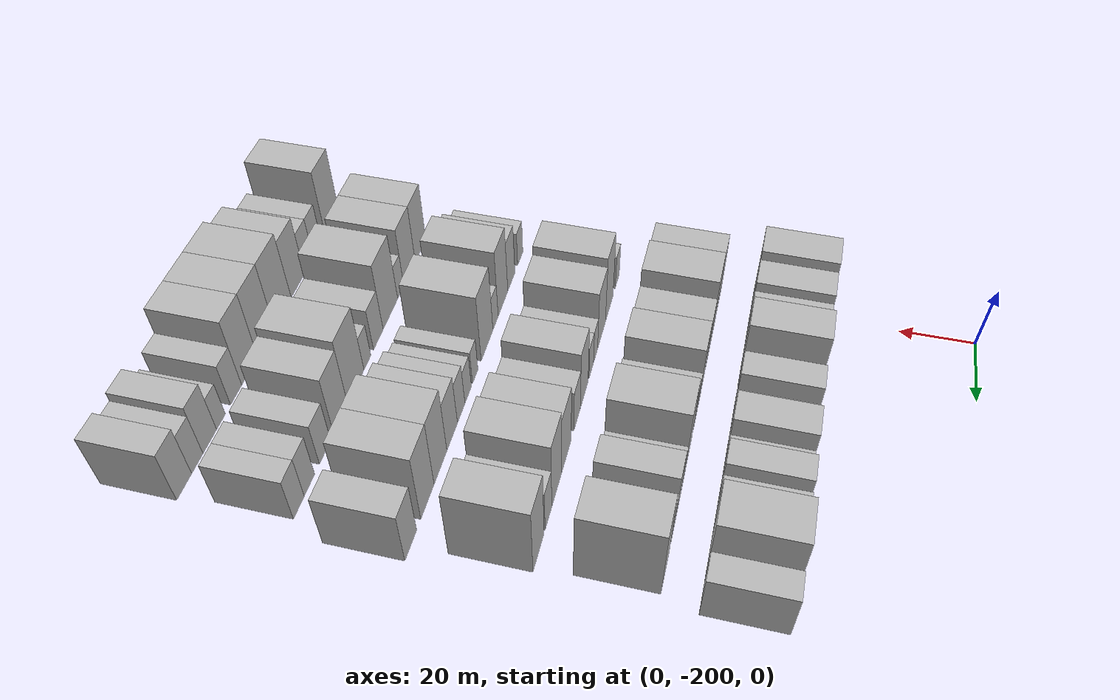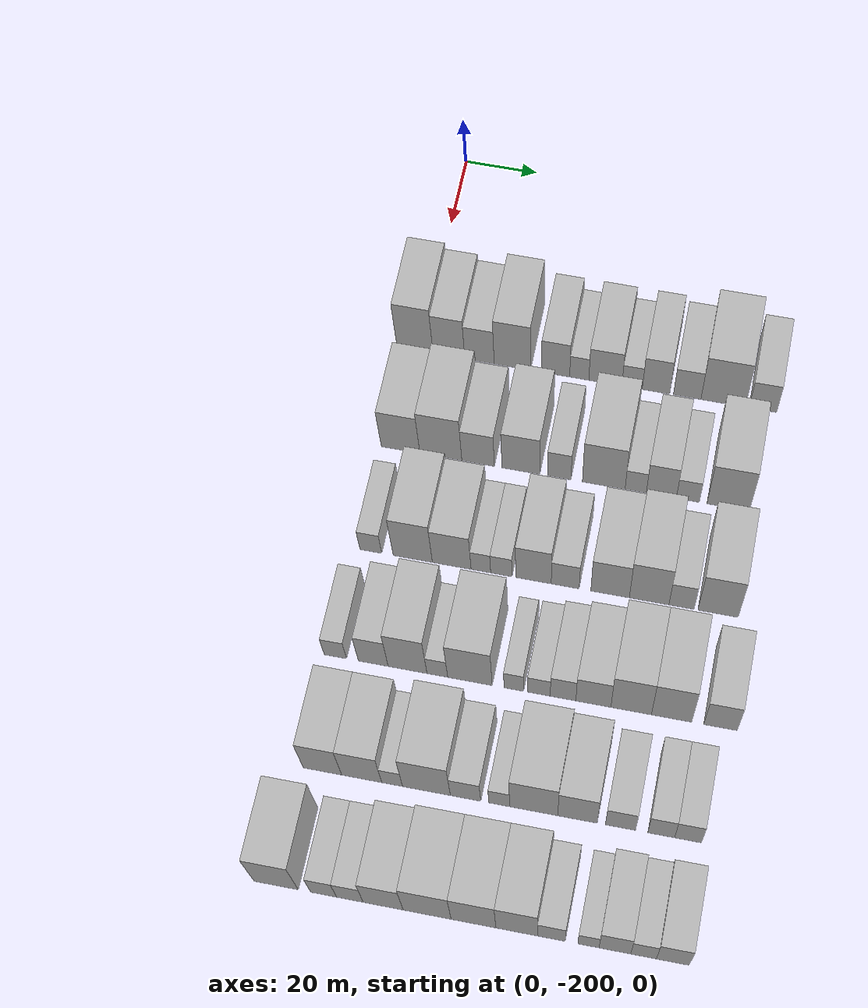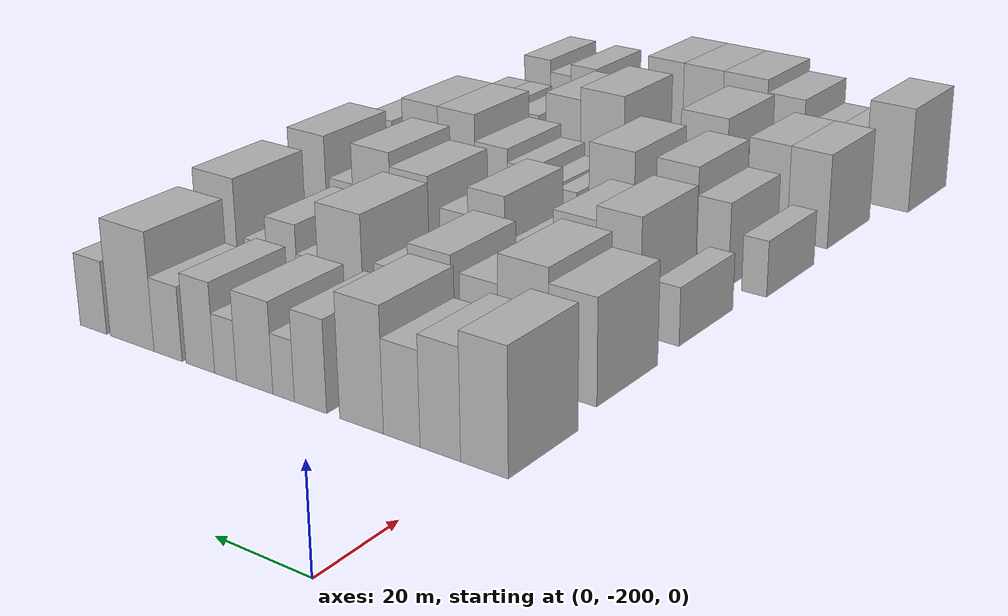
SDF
<sdf version="1.6">
 <world name="default">
  <model name="building_33">
   <static>1</static>
   <pose>50.0000 -201.5106 0 0.000000 0.000000 0.000000</pose>
   <link name="link">
    <pose>0 0 12.00 0 0 0</pose>
    <collision name="collision"><geometry><box><size>20.0000 9.7884 24.0000</size></box></geometry></collision>
    <visual name="visual">
     <cast_shadows>0</cast_shadows>
     <geometry><box><size>20.0000 9.7884 24.0000</size></box></geometry>
     <material>
      <script>
       <uri>model://HANNAS_wall/materials/scripts</uri>
       <uri>model://HANNAS_wall/materials/textures</uri>
       <name>vrc/HANNAS_wall</name>
      </script>
     </material>
    </visual>
   </link>
  </model>
  <model name="building_34">
   <static>1</static>
   <pose>50.0000 -192.3269 0 0.000000 0.000000 0.000000</pose>
   <link name="link">
    <pose>0 0 10.50 0 0 0</pose>
    <collision name="collision"><geometry><box><size>20.0000 8.5790 21.0000</size></box></geometry></collision>
    <visual name="visual">
     <cast_shadows>0</cast_shadows>
     <geometry><box><size>20.0000 8.5790 21.0000</size></box></geometry>
     <material>
      <script>
       <uri>model://HANNAS_wall/materials/scripts</uri>
       <uri>model://HANNAS_wall/materials/textures</uri>
       <name>vrc/HANNAS_wall</name>
      </script>
     </material>
    </visual>
   </link>
  </model>
  <model name="building_35">
   <static>1</static>
   <pose>50.0000 -184.0494 0 0.000000 0.000000 0.000000</pose>
   <link name="link">
    <pose>0 0 9.00 0 0 0</pose>
    <collision name="collision"><geometry><box><size>20.0000 7.9759 18.0000</size></box></geometry></collision>
    <visual name="visual">
     <cast_shadows>0</cast_shadows>
     <geometry><box><size>20.0000 7.9759 18.0000</size></box></geometry>
     <material>
      <script>
       <uri>model://HANNAS_wall/materials/scripts</uri>
       <uri>model://HANNAS_wall/materials/textures</uri>
       <name>vrc/HANNAS_wall</name>
      </script>
     </material>
    </visual>
   </link>
  </model>
  <model name="building_36">
   <static>1</static>
   <pose>50.0000 -175.1537 0 0.000000 0.000000 0.000000</pose>
   <link name="link">
    <pose>0 0 12.00 0 0 0</pose>
    <collision name="collision"><geometry><box><size>20.0000 9.8156 24.0000</size></box></geometry></collision>
    <visual name="visual">
     <cast_shadows>0</cast_shadows>
     <geometry><box><size>20.0000 9.8156 24.0000</size></box></geometry>
     <material>
      <script>
       <uri>model://HANNAS_wall/materials/scripts</uri>
       <uri>model://HANNAS_wall/materials/textures</uri>
       <name>vrc/HANNAS_wall</name>
      </script>
     </material>
    </visual>
   </link>
  </model>
  <model name="building_37">
   <static>1</static>
   <pose>50.0000 -163.4848 0 0.000000 0.000000 0.000000</pose>
   <link name="link">
    <pose>0 0 9.00 0 0 0</pose>
    <collision name="collision"><geometry><box><size>20.0000 7.5222 18.0000</size></box></geometry></collision>
    <visual name="visual">
     <cast_shadows>0</cast_shadows>
     <geometry><box><size>20.0000 7.5222 18.0000</size></box></geometry>
     <material>
      <script>
       <uri>model://HANNAS_wall/materials/scripts</uri>
       <uri>model://HANNAS_wall/materials/textures</uri>
       <name>vrc/HANNAS_wall</name>
      </script>
     </material>
    </visual>
   </link>
  </model>
  <model name="building_38">
   <static>1</static>
   <pose>50.0000 -157.1644 0 0.000000 0.000000 0.000000</pose>
   <link name="link">
    <pose>0 0 6.00 0 0 0</pose>
    <collision name="collision"><geometry><box><size>20.0000 5.1187 12.0000</size></box></geometry></collision>
    <visual name="visual">
     <cast_shadows>0</cast_shadows>
     <geometry><box><size>20.0000 5.1187 12.0000</size></box></geometry>
     <material>
      <script>
       <uri>model://HANNAS_wall/materials/scripts</uri>
       <uri>model://HANNAS_wall/materials/textures</uri>
       <name>vrc/HANNAS_wall</name>
      </script>
     </material>
    </visual>
   </link>
  </model>
  <model name="building_39">
   <static>1</static>
   <pose>50.0000 -150.1670 0 0.000000 0.000000 0.000000</pose>
   <link name="link">
    <pose>0 0 9.00 0 0 0</pose>
    <collision name="collision"><geometry><box><size>20.0000 8.8761 18.0000</size></box></geometry></collision>
    <visual name="visual">
     <cast_shadows>0</cast_shadows>
     <geometry><box><size>20.0000 8.8761 18.0000</size></box></geometry>
     <material>
      <script>
       <uri>model://HANNAS_wall/materials/scripts</uri>
       <uri>model://HANNAS_wall/materials/textures</uri>
       <name>vrc/HANNAS_wall</name>
      </script>
     </material>
    </visual>
   </link>
  </model>
  <model name="building_40">
   <static>1</static>
   <pose>50.0000 -143.0073 0 0.000000 0.000000 0.000000</pose>
   <link name="link">
    <pose>0 0 6.00 0 0 0</pose>
    <collision name="collision"><geometry><box><size>20.0000 5.4432 12.0000</size></box></geometry></collision>
    <visual name="visual">
     <cast_shadows>0</cast_shadows>
     <geometry><box><size>20.0000 5.4432 12.0000</size></box></geometry>
     <material>
      <script>
       <uri>model://HANNAS_wall/materials/scripts</uri>
       <uri>model://HANNAS_wall/materials/textures</uri>
       <name>vrc/HANNAS_wall</name>
      </script>
     </material>
    </visual>
   </link>
  </model>
  <model name="building_41">
   <static>1</static>
   <pose>50.0000 -136.6264 0 0.000000 0.000000 0.000000</pose>
   <link name="link">
    <pose>0 0 9.00 0 0 0</pose>
    <collision name="collision"><geometry><box><size>20.0000 7.3187 18.0000</size></box></geometry></collision>
    <visual name="visual">
     <cast_shadows>0</cast_shadows>
     <geometry><box><size>20.0000 7.3187 18.0000</size></box></geometry>
     <material>
      <script>
       <uri>model://HANNAS_wall/materials/scripts</uri>
       <uri>model://HANNAS_wall/materials/textures</uri>
       <name>vrc/HANNAS_wall</name>
      </script>
     </material>
    </visual>
   </link>
  </model>
  <model name="building_42">
   <static>1</static>
   <pose>50.0000 -128.3104 0 0.000000 0.000000 0.000000</pose>
   <link name="link">
    <pose>0 0 7.50 0 0 0</pose>
    <collision name="collision"><geometry><box><size>20.0000 7.3132 15.0000</size></box></geometry></collision>
    <visual name="visual">
     <cast_shadows>0</cast_shadows>
     <geometry><box><size>20.0000 7.3132 15.0000</size></box></geometry>
     <material>
      <script>
       <uri>model://HANNAS_wall/materials/scripts</uri>
       <uri>model://HANNAS_wall/materials/textures</uri>
       <name>vrc/HANNAS_wall</name>
      </script>
     </material>
    </visual>
   </link>
  </model>
  <model name="building_43">
   <static>1</static>
   <pose>50.0000 -118.7637 0 0.000000 0.000000 0.000000</pose>
   <link name="link">
    <pose>0 0 12.00 0 0 0</pose>
    <collision name="collision"><geometry><box><size>20.0000 11.7802 24.0000</size></box></geometry></collision>
    <visual name="visual">
     <cast_shadows>0</cast_shadows>
     <geometry><box><size>20.0000 11.7802 24.0000</size></box></geometry>
     <material>
      <script>
       <uri>model://HANNAS_wall/materials/scripts</uri>
       <uri>model://HANNAS_wall/materials/textures</uri>
       <name>vrc/HANNAS_wall</name>
      </script>
     </material>
    </visual>
   </link>
  </model>
  <model name="building_44">
   <static>1</static>
   <pose>50.0000 -108.2134 0 0.000000 0.000000 0.000000</pose>
   <link name="link">
    <pose>0 0 7.50 0 0 0</pose>
    <collision name="collision"><geometry><box><size>20.0000 7.3204 15.0000</size></box></geometry></collision>
    <visual name="visual">
     <cast_shadows>0</cast_shadows>
     <geometry><box><size>20.0000 7.3204 15.0000</size></box></geometry>
     <material>
      <script>
       <uri>model://HANNAS_wall/materials/scripts</uri>
       <uri>model://HANNAS_wall/materials/textures</uri>
       <name>vrc/HANNAS_wall</name>
      </script>
     </material>
    </visual>
   </link>
  </model>
  <model name="building_150">
   <static>1</static>
   <pose>79.0000 -199.0753 0 0.000000 0.000000 0.000000</pose>
   <link name="link">
    <pose>0 0 10.50 0 0 0</pose>
    <collision name="collision"><geometry><box><size>20.0000 10.2621 21.0000</size></box></geometry></collision>
    <visual name="visual">
     <cast_shadows>0</cast_shadows>
     <geometry><box><size>20.0000 10.2621 21.0000</size></box></geometry>
     <material>
      <script>
       <uri>model://HANNAS_wall/materials/scripts</uri>
       <uri>model://HANNAS_wall/materials/textures</uri>
       <name>vrc/HANNAS_wall</name>
      </script>
     </material>
    </visual>
   </link>
  </model>
  <model name="building_151">
   <static>1</static>
   <pose>79.0000 -188.3875 0 0.000000 0.000000 0.000000</pose>
   <link name="link">
    <pose>0 0 12.00 0 0 0</pose>
    <collision name="collision"><geometry><box><size>20.0000 11.1135 24.0000</size></box></geometry></collision>
    <visual name="visual">
     <cast_shadows>0</cast_shadows>
     <geometry><box><size>20.0000 11.1135 24.0000</size></box></geometry>
     <material>
      <script>
       <uri>model://HANNAS_wall/materials/scripts</uri>
       <uri>model://HANNAS_wall/materials/textures</uri>
       <name>vrc/HANNAS_wall</name>
      </script>
     </material>
    </visual>
   </link>
  </model>
  <model name="building_152">
   <static>1</static>
   <pose>79.0000 -178.5233 0 0.000000 0.000000 0.000000</pose>
   <link name="link">
    <pose>0 0 9.00 0 0 0</pose>
    <collision name="collision"><geometry><box><size>20.0000 8.6148 18.0000</size></box></geometry></collision>
    <visual name="visual">
     <cast_shadows>0</cast_shadows>
     <geometry><box><size>20.0000 8.6148 18.0000</size></box></geometry>
     <material>
      <script>
       <uri>model://HANNAS_wall/materials/scripts</uri>
       <uri>model://HANNAS_wall/materials/textures</uri>
       <name>vrc/HANNAS_wall</name>
      </script>
     </material>
    </visual>
   </link>
  </model>
  <model name="building_153">
   <static>1</static>
   <pose>79.0000 -167.2297 0 0.000000 0.000000 0.000000</pose>
   <link name="link">
    <pose>0 0 10.50 0 0 0</pose>
    <collision name="collision"><geometry><box><size>20.0000 9.9723 21.0000</size></box></geometry></collision>
    <visual name="visual">
     <cast_shadows>0</cast_shadows>
     <geometry><box><size>20.0000 9.9723 21.0000</size></box></geometry>
     <material>
      <script>
       <uri>model://HANNAS_wall/materials/scripts</uri>
       <uri>model://HANNAS_wall/materials/textures</uri>
       <name>vrc/HANNAS_wall</name>
      </script>
     </material>
    </visual>
   </link>
  </model>
  <model name="building_154">
   <static>1</static>
   <pose>79.0000 -157.1496 0 0.000000 0.000000 0.000000</pose>
   <link name="link">
    <pose>0 0 7.50 0 0 0</pose>
    <collision name="collision"><geometry><box><size>20.0000 6.1880 15.0000</size></box></geometry></collision>
    <visual name="visual">
     <cast_shadows>0</cast_shadows>
     <geometry><box><size>20.0000 6.1880 15.0000</size></box></geometry>
     <material>
      <script>
       <uri>model://HANNAS_wall/materials/scripts</uri>
       <uri>model://HANNAS_wall/materials/textures</uri>
       <name>vrc/HANNAS_wall</name>
      </script>
     </material>
    </visual>
   </link>
  </model>
  <model name="building_155">
   <static>1</static>
   <pose>79.0000 -145.4756 0 0.000000 0.000000 0.000000</pose>
   <link name="link">
    <pose>0 0 12.00 0 0 0</pose>
    <collision name="collision"><geometry><box><size>20.0000 11.1599 24.0000</size></box></geometry></collision>
    <visual name="visual">
     <cast_shadows>0</cast_shadows>
     <geometry><box><size>20.0000 11.1599 24.0000</size></box></geometry>
     <material>
      <script>
       <uri>model://HANNAS_wall/materials/scripts</uri>
       <uri>model://HANNAS_wall/materials/textures</uri>
       <name>vrc/HANNAS_wall</name>
      </script>
     </material>
    </visual>
   </link>
  </model>
  <model name="building_156">
   <static>1</static>
   <pose>79.0000 -137.1207 0 0.000000 0.000000 0.000000</pose>
   <link name="link">
    <pose>0 0 6.00 0 0 0</pose>
    <collision name="collision"><geometry><box><size>20.0000 5.5499 12.0000</size></box></geometry></collision>
    <visual name="visual">
     <cast_shadows>0</cast_shadows>
     <geometry><box><size>20.0000 5.5499 12.0000</size></box></geometry>
     <material>
      <script>
       <uri>model://HANNAS_wall/materials/scripts</uri>
       <uri>model://HANNAS_wall/materials/textures</uri>
       <name>vrc/HANNAS_wall</name>
      </script>
     </material>
    </visual>
   </link>
  </model>
  <model name="building_157">
   <static>1</static>
   <pose>79.0000 -130.4209 0 0.000000 0.000000 0.000000</pose>
   <link name="link">
    <pose>0 0 9.00 0 0 0</pose>
    <collision name="collision"><geometry><box><size>20.0000 7.8496 18.0000</size></box></geometry></collision>
    <visual name="visual">
     <cast_shadows>0</cast_shadows>
     <geometry><box><size>20.0000 7.8496 18.0000</size></box></geometry>
     <material>
      <script>
       <uri>model://HANNAS_wall/materials/scripts</uri>
       <uri>model://HANNAS_wall/materials/textures</uri>
       <name>vrc/HANNAS_wall</name>
      </script>
     </material>
    </visual>
   </link>
  </model>
  <model name="building_158">
   <static>1</static>
   <pose>79.0000 -123.5038 0 0.000000 0.000000 0.000000</pose>
   <link name="link">
    <pose>0 0 6.00 0 0 0</pose>
    <collision name="collision"><geometry><box><size>20.0000 5.9847 12.0000</size></box></geometry></collision>
    <visual name="visual">
     <cast_shadows>0</cast_shadows>
     <geometry><box><size>20.0000 5.9847 12.0000</size></box></geometry>
     <material>
      <script>
       <uri>model://HANNAS_wall/materials/scripts</uri>
       <uri>model://HANNAS_wall/materials/textures</uri>
       <name>vrc/HANNAS_wall</name>
      </script>
     </material>
    </visual>
   </link>
  </model>
  <model name="building_159">
   <static>1</static>
   <pose>79.0000 -113.0127 0 0.000000 0.000000 0.000000</pose>
   <link name="link">
    <pose>0 0 12.00 0 0 0</pose>
    <collision name="collision"><geometry><box><size>20.0000 10.9976 24.0000</size></box></geometry></collision>
    <visual name="visual">
     <cast_shadows>0</cast_shadows>
     <geometry><box><size>20.0000 10.9976 24.0000</size></box></geometry>
     <material>
      <script>
       <uri>model://HANNAS_wall/materials/scripts</uri>
       <uri>model://HANNAS_wall/materials/textures</uri>
       <name>vrc/HANNAS_wall</name>
      </script>
     </material>
    </visual>
   </link>
  </model>
  <model name="building_265">
   <static>1</static>
   <pose>108.0000 -200.4489 0 0.000000 0.000000 0.000000</pose>
   <link name="link">
    <pose>0 0 6.00 0 0 0</pose>
    <collision name="collision"><geometry><box><size>20.0000 5.6499 12.0000</size></box></geometry></collision>
    <visual name="visual">
     <cast_shadows>0</cast_shadows>
     <geometry><box><size>20.0000 5.6499 12.0000</size></box></geometry>
     <material>
      <script>
       <uri>model://HANNAS_wall/materials/scripts</uri>
       <uri>model://HANNAS_wall/materials/textures</uri>
       <name>vrc/HANNAS_wall</name>
      </script>
     </material>
    </visual>
   </link>
  </model>
  <model name="building_266">
   <static>1</static>
   <pose>108.0000 -189.5399 0 0.000000 0.000000 0.000000</pose>
   <link name="link">
    <pose>0 0 12.00 0 0 0</pose>
    <collision name="collision"><geometry><box><size>20.0000 10.1680 24.0000</size></box></geometry></collision>
    <visual name="visual">
     <cast_shadows>0</cast_shadows>
     <geometry><box><size>20.0000 10.1680 24.0000</size></box></geometry>
     <material>
      <script>
       <uri>model://HANNAS_wall/materials/scripts</uri>
       <uri>model://HANNAS_wall/materials/textures</uri>
       <name>vrc/HANNAS_wall</name>
      </script>
     </material>
    </visual>
   </link>
  </model>
  <model name="building_267">
   <static>1</static>
   <pose>108.0000 -179.4503 0 0.000000 0.000000 0.000000</pose>
   <link name="link">
    <pose>0 0 10.50 0 0 0</pose>
    <collision name="collision"><geometry><box><size>20.0000 10.0112 21.0000</size></box></geometry></collision>
    <visual name="visual">
     <cast_shadows>0</cast_shadows>
     <geometry><box><size>20.0000 10.0112 21.0000</size></box></geometry>
     <material>
      <script>
       <uri>model://HANNAS_wall/materials/scripts</uri>
       <uri>model://HANNAS_wall/materials/textures</uri>
       <name>vrc/HANNAS_wall</name>
      </script>
     </material>
    </visual>
   </link>
  </model>
  <model name="building_268">
   <static>1</static>
   <pose>108.0000 -171.9174 0 0.000000 0.000000 0.000000</pose>
   <link name="link">
    <pose>0 0 6.00 0 0 0</pose>
    <collision name="collision"><geometry><box><size>20.0000 5.0546 12.0000</size></box></geometry></collision>
    <visual name="visual">
     <cast_shadows>0</cast_shadows>
     <geometry><box><size>20.0000 5.0546 12.0000</size></box></geometry>
     <material>
      <script>
       <uri>model://HANNAS_wall/materials/scripts</uri>
       <uri>model://HANNAS_wall/materials/textures</uri>
       <name>vrc/HANNAS_wall</name>
      </script>
     </material>
    </visual>
   </link>
  </model>
  <model name="building_269">
   <static>1</static>
   <pose>108.0000 -166.6346 0 0.000000 0.000000 0.000000</pose>
   <link name="link">
    <pose>0 0 6.00 0 0 0</pose>
    <collision name="collision"><geometry><box><size>20.0000 5.5110 12.0000</size></box></geometry></collision>
    <visual name="visual">
     <cast_shadows>0</cast_shadows>
     <geometry><box><size>20.0000 5.5110 12.0000</size></box></geometry>
     <material>
      <script>
       <uri>model://HANNAS_wall/materials/scripts</uri>
       <uri>model://HANNAS_wall/materials/textures</uri>
       <name>vrc/HANNAS_wall</name>
      </script>
     </material>
    </visual>
   </link>
  </model>
  <model name="building_270">
   <static>1</static>
   <pose>108.0000 -158.3433 0 0.000000 0.000000 0.000000</pose>
   <link name="link">
    <pose>0 0 10.50 0 0 0</pose>
    <collision name="collision"><geometry><box><size>20.0000 9.0716 21.0000</size></box></geometry></collision>
    <visual name="visual">
     <cast_shadows>0</cast_shadows>
     <geometry><box><size>20.0000 9.0716 21.0000</size></box></geometry>
     <material>
      <script>
       <uri>model://HANNAS_wall/materials/scripts</uri>
       <uri>model://HANNAS_wall/materials/textures</uri>
       <name>vrc/HANNAS_wall</name>
      </script>
     </material>
    </visual>
   </link>
  </model>
  <model name="building_271">
   <static>1</static>
   <pose>108.0000 -150.2254 0 0.000000 0.000000 0.000000</pose>
   <link name="link">
    <pose>0 0 7.50 0 0 0</pose>
    <collision name="collision"><geometry><box><size>20.0000 7.1643 15.0000</size></box></geometry></collision>
    <visual name="visual">
     <cast_shadows>0</cast_shadows>
     <geometry><box><size>20.0000 7.1643 15.0000</size></box></geometry>
     <material>
      <script>
       <uri>model://HANNAS_wall/materials/scripts</uri>
       <uri>model://HANNAS_wall/materials/textures</uri>
       <name>vrc/HANNAS_wall</name>
      </script>
     </material>
    </visual>
   </link>
  </model>
  <model name="building_272">
   <static>1</static>
   <pose>108.0000 -138.7220 0 0.000000 0.000000 0.000000</pose>
   <link name="link">
    <pose>0 0 10.50 0 0 0</pose>
    <collision name="collision"><geometry><box><size>20.0000 9.8425 21.0000</size></box></geometry></collision>
    <visual name="visual">
     <cast_shadows>0</cast_shadows>
     <geometry><box><size>20.0000 9.8425 21.0000</size></box></geometry>
     <material>
      <script>
       <uri>model://HANNAS_wall/materials/scripts</uri>
       <uri>model://HANNAS_wall/materials/textures</uri>
       <name>vrc/HANNAS_wall</name>
      </script>
     </material>
    </visual>
   </link>
  </model>
  <model name="building_273">
   <static>1</static>
   <pose>108.0000 -128.7483 0 0.000000 0.000000 0.000000</pose>
   <link name="link">
    <pose>0 0 12.00 0 0 0</pose>
    <collision name="collision"><geometry><box><size>20.0000 10.1050 24.0000</size></box></geometry></collision>
    <visual name="visual">
     <cast_shadows>0</cast_shadows>
     <geometry><box><size>20.0000 10.1050 24.0000</size></box></geometry>
     <material>
      <script>
       <uri>model://HANNAS_wall/materials/scripts</uri>
       <uri>model://HANNAS_wall/materials/textures</uri>
       <name>vrc/HANNAS_wall</name>
      </script>
     </material>
    </visual>
   </link>
  </model>
  <model name="building_274">
   <static>1</static>
   <pose>108.0000 -120.4995 0 0.000000 0.000000 0.000000</pose>
   <link name="link">
    <pose>0 0 7.50 0 0 0</pose>
    <collision name="collision"><geometry><box><size>20.0000 6.3925 15.0000</size></box></geometry></collision>
    <visual name="visual">
     <cast_shadows>0</cast_shadows>
     <geometry><box><size>20.0000 6.3925 15.0000</size></box></geometry>
     <material>
      <script>
       <uri>model://HANNAS_wall/materials/scripts</uri>
       <uri>model://HANNAS_wall/materials/textures</uri>
       <name>vrc/HANNAS_wall</name>
      </script>
     </material>
    </visual>
   </link>
  </model>
  <model name="building_275">
   <static>1</static>
   <pose>108.0000 -111.2055 0 0.000000 0.000000 0.000000</pose>
   <link name="link">
    <pose>0 0 12.00 0 0 0</pose>
    <collision name="collision"><geometry><box><size>20.0000 10.1956 24.0000</size></box></geometry></collision>
    <visual name="visual">
     <cast_shadows>0</cast_shadows>
     <geometry><box><size>20.0000 10.1956 24.0000</size></box></geometry>
     <material>
      <script>
       <uri>model://HANNAS_wall/materials/scripts</uri>
       <uri>model://HANNAS_wall/materials/textures</uri>
       <name>vrc/HANNAS_wall</name>
      </script>
     </material>
    </visual>
   </link>
  </model>
  <model name="building_376">
   <static>1</static>
   <pose>137.0000 -202.9417 0 0.000000 0.000000 0.000000</pose>
   <link name="link">
    <pose>0 0 6.00 0 0 0</pose>
    <collision name="collision"><geometry><box><size>20.0000 5.7023 12.0000</size></box></geometry></collision>
    <visual name="visual">
     <cast_shadows>0</cast_shadows>
     <geometry><box><size>20.0000 5.7023 12.0000</size></box></geometry>
     <material>
      <script>
       <uri>model://HANNAS_wall/materials/scripts</uri>
       <uri>model://HANNAS_wall/materials/textures</uri>
       <name>vrc/HANNAS_wall</name>
      </script>
     </material>
    </visual>
   </link>
  </model>
  <model name="building_377">
   <static>1</static>
   <pose>137.0000 -193.3016 0 0.000000 0.000000 0.000000</pose>
   <link name="link">
    <pose>0 0 9.00 0 0 0</pose>
    <collision name="collision"><geometry><box><size>20.0000 7.5780 18.0000</size></box></geometry></collision>
    <visual name="visual">
     <cast_shadows>0</cast_shadows>
     <geometry><box><size>20.0000 7.5780 18.0000</size></box></geometry>
     <material>
      <script>
       <uri>model://HANNAS_wall/materials/scripts</uri>
       <uri>model://HANNAS_wall/materials/textures</uri>
       <name>vrc/HANNAS_wall</name>
      </script>
     </material>
    </visual>
   </link>
  </model>
  <model name="building_378">
   <static>1</static>
   <pose>137.0000 -184.5839 0 0.000000 0.000000 0.000000</pose>
   <link name="link">
    <pose>0 0 12.00 0 0 0</pose>
    <collision name="collision"><geometry><box><size>20.0000 9.8573 24.0000</size></box></geometry></collision>
    <visual name="visual">
     <cast_shadows>0</cast_shadows>
     <geometry><box><size>20.0000 9.8573 24.0000</size></box></geometry>
     <material>
      <script>
       <uri>model://HANNAS_wall/materials/scripts</uri>
       <uri>model://HANNAS_wall/materials/textures</uri>
       <name>vrc/HANNAS_wall</name>
      </script>
     </material>
    </visual>
   </link>
  </model>
  <model name="building_379">
   <static>1</static>
   <pose>137.0000 -177.0437 0 0.000000 0.000000 0.000000</pose>
   <link name="link">
    <pose>0 0 6.00 0 0 0</pose>
    <collision name="collision"><geometry><box><size>20.0000 5.2232 12.0000</size></box></geometry></collision>
    <visual name="visual">
     <cast_shadows>0</cast_shadows>
     <geometry><box><size>20.0000 5.2232 12.0000</size></box></geometry>
     <material>
      <script>
       <uri>model://HANNAS_wall/materials/scripts</uri>
       <uri>model://HANNAS_wall/materials/textures</uri>
       <name>vrc/HANNAS_wall</name>
      </script>
     </material>
    </visual>
   </link>
  </model>
  <model name="building_380">
   <static>1</static>
   <pose>137.0000 -168.8135 0 0.000000 0.000000 0.000000</pose>
   <link name="link">
    <pose>0 0 12.00 0 0 0</pose>
    <collision name="collision"><geometry><box><size>20.0000 11.2372 24.0000</size></box></geometry></collision>
    <visual name="visual">
     <cast_shadows>0</cast_shadows>
     <geometry><box><size>20.0000 11.2372 24.0000</size></box></geometry>
     <material>
      <script>
       <uri>model://HANNAS_wall/materials/scripts</uri>
       <uri>model://HANNAS_wall/materials/textures</uri>
       <name>vrc/HANNAS_wall</name>
      </script>
     </material>
    </visual>
   </link>
  </model>
  <model name="building_381">
   <static>1</static>
   <pose>137.0000 -157.7362 0 0.000000 0.000000 0.000000</pose>
   <link name="link">
    <pose>0 0 6.00 0 0 0</pose>
    <collision name="collision"><geometry><box><size>20.0000 4.9174 12.0000</size></box></geometry></collision>
    <visual name="visual">
     <cast_shadows>0</cast_shadows>
     <geometry><box><size>20.0000 4.9174 12.0000</size></box></geometry>
     <material>
      <script>
       <uri>model://HANNAS_wall/materials/scripts</uri>
       <uri>model://HANNAS_wall/materials/textures</uri>
       <name>vrc/HANNAS_wall</name>
      </script>
     </material>
    </visual>
   </link>
  </model>
  <model name="building_382">
   <static>1</static>
   <pose>137.0000 -151.4319 0 0.000000 0.000000 0.000000</pose>
   <link name="link">
    <pose>0 0 6.00 0 0 0</pose>
    <collision name="collision"><geometry><box><size>20.0000 5.6911 12.0000</size></box></geometry></collision>
    <visual name="visual">
     <cast_shadows>0</cast_shadows>
     <geometry><box><size>20.0000 5.6911 12.0000</size></box></geometry>
     <material>
      <script>
       <uri>model://HANNAS_wall/materials/scripts</uri>
       <uri>model://HANNAS_wall/materials/textures</uri>
       <name>vrc/HANNAS_wall</name>
      </script>
     </material>
    </visual>
   </link>
  </model>
  <model name="building_383">
   <static>1</static>
   <pose>137.0000 -145.3822 0 0.000000 0.000000 0.000000</pose>
   <link name="link">
    <pose>0 0 7.50 0 0 0</pose>
    <collision name="collision"><geometry><box><size>20.0000 6.4083 15.0000</size></box></geometry></collision>
    <visual name="visual">
     <cast_shadows>0</cast_shadows>
     <geometry><box><size>20.0000 6.4083 15.0000</size></box></geometry>
     <material>
      <script>
       <uri>model://HANNAS_wall/materials/scripts</uri>
       <uri>model://HANNAS_wall/materials/textures</uri>
       <name>vrc/HANNAS_wall</name>
      </script>
     </material>
    </visual>
   </link>
  </model>
  <model name="building_384">
   <static>1</static>
   <pose>137.0000 -137.8052 0 0.000000 0.000000 0.000000</pose>
   <link name="link">
    <pose>0 0 9.00 0 0 0</pose>
    <collision name="collision"><geometry><box><size>20.0000 8.7457 18.0000</size></box></geometry></collision>
    <visual name="visual">
     <cast_shadows>0</cast_shadows>
     <geometry><box><size>20.0000 8.7457 18.0000</size></box></geometry>
     <material>
      <script>
       <uri>model://HANNAS_wall/materials/scripts</uri>
       <uri>model://HANNAS_wall/materials/textures</uri>
       <name>vrc/HANNAS_wall</name>
      </script>
     </material>
    </visual>
   </link>
  </model>
  <model name="building_385">
   <static>1</static>
   <pose>137.0000 -128.3775 0 0.000000 0.000000 0.000000</pose>
   <link name="link">
    <pose>0 0 12.00 0 0 0</pose>
    <collision name="collision"><geometry><box><size>20.0000 10.1097 24.0000</size></box></geometry></collision>
    <visual name="visual">
     <cast_shadows>0</cast_shadows>
     <geometry><box><size>20.0000 10.1097 24.0000</size></box></geometry>
     <material>
      <script>
       <uri>model://HANNAS_wall/materials/scripts</uri>
       <uri>model://HANNAS_wall/materials/textures</uri>
       <name>vrc/HANNAS_wall</name>
      </script>
     </material>
    </visual>
   </link>
  </model>
  <model name="building_386">
   <static>1</static>
   <pose>137.0000 -118.3121 0 0.000000 0.000000 0.000000</pose>
   <link name="link">
    <pose>0 0 12.00 0 0 0</pose>
    <collision name="collision"><geometry><box><size>20.0000 10.0212 24.0000</size></box></geometry></collision>
    <visual name="visual">
     <cast_shadows>0</cast_shadows>
     <geometry><box><size>20.0000 10.0212 24.0000</size></box></geometry>
     <material>
      <script>
       <uri>model://HANNAS_wall/materials/scripts</uri>
       <uri>model://HANNAS_wall/materials/textures</uri>
       <name>vrc/HANNAS_wall</name>
      </script>
     </material>
    </visual>
   </link>
  </model>
  <model name="building_387">
   <static>1</static>
   <pose>137.0000 -106.1566 0 0.000000 0.000000 0.000000</pose>
   <link name="link">
    <pose>0 0 9.00 0 0 0</pose>
    <collision name="collision"><geometry><box><size>20.0000 8.2899 18.0000</size></box></geometry></collision>
    <visual name="visual">
     <cast_shadows>0</cast_shadows>
     <geometry><box><size>20.0000 8.2899 18.0000</size></box></geometry>
     <material>
      <script>
       <uri>model://HANNAS_wall/materials/scripts</uri>
       <uri>model://HANNAS_wall/materials/textures</uri>
       <name>vrc/HANNAS_wall</name>
      </script>
     </material>
    </visual>
   </link>
  </model>
  <model name="building_494">
   <static>1</static>
   <pose>166.0000 -199.4009 0 0.000000 0.000000 0.000000</pose>
   <link name="link">
    <pose>0 0 10.50 0 0 0</pose>
    <collision name="collision"><geometry><box><size>20.0000 9.5617 21.0000</size></box></geometry></collision>
    <visual name="visual">
     <cast_shadows>0</cast_shadows>
     <geometry><box><size>20.0000 9.5617 21.0000</size></box></geometry>
     <material>
      <script>
       <uri>model://HANNAS_wall/materials/scripts</uri>
       <uri>model://HANNAS_wall/materials/textures</uri>
       <name>vrc/HANNAS_wall</name>
      </script>
     </material>
    </visual>
   </link>
  </model>
  <model name="building_495">
   <static>1</static>
   <pose>166.0000 -189.6479 0 0.000000 0.000000 0.000000</pose>
   <link name="link">
    <pose>0 0 10.50 0 0 0</pose>
    <collision name="collision"><geometry><box><size>20.0000 9.9443 21.0000</size></box></geometry></collision>
    <visual name="visual">
     <cast_shadows>0</cast_shadows>
     <geometry><box><size>20.0000 9.9443 21.0000</size></box></geometry>
     <material>
      <script>
       <uri>model://HANNAS_wall/materials/scripts</uri>
       <uri>model://HANNAS_wall/materials/textures</uri>
       <name>vrc/HANNAS_wall</name>
      </script>
     </material>
    </visual>
   </link>
  </model>
  <model name="building_496">
   <static>1</static>
   <pose>166.0000 -182.0946 0 0.000000 0.000000 0.000000</pose>
   <link name="link">
    <pose>0 0 6.00 0 0 0</pose>
    <collision name="collision"><geometry><box><size>20.0000 5.1623 12.0000</size></box></geometry></collision>
    <visual name="visual">
     <cast_shadows>0</cast_shadows>
     <geometry><box><size>20.0000 5.1623 12.0000</size></box></geometry>
     <material>
      <script>
       <uri>model://HANNAS_wall/materials/scripts</uri>
       <uri>model://HANNAS_wall/materials/textures</uri>
       <name>vrc/HANNAS_wall</name>
      </script>
     </material>
    </visual>
   </link>
  </model>
  <model name="building_497">
   <static>1</static>
   <pose>166.0000 -173.5982 0 0.000000 0.000000 0.000000</pose>
   <link name="link">
    <pose>0 0 12.00 0 0 0</pose>
    <collision name="collision"><geometry><box><size>20.0000 11.8305 24.0000</size></box></geometry></collision>
    <visual name="visual">
     <cast_shadows>0</cast_shadows>
     <geometry><box><size>20.0000 11.8305 24.0000</size></box></geometry>
     <material>
      <script>
       <uri>model://HANNAS_wall/materials/scripts</uri>
       <uri>model://HANNAS_wall/materials/textures</uri>
       <name>vrc/HANNAS_wall</name>
      </script>
     </material>
    </visual>
   </link>
  </model>
  <model name="building_498">
   <static>1</static>
   <pose>166.0000 -163.9395 0 0.000000 0.000000 0.000000</pose>
   <link name="link">
    <pose>0 0 7.50 0 0 0</pose>
    <collision name="collision"><geometry><box><size>20.0000 7.4868 15.0000</size></box></geometry></collision>
    <visual name="visual">
     <cast_shadows>0</cast_shadows>
     <geometry><box><size>20.0000 7.4868 15.0000</size></box></geometry>
     <material>
      <script>
       <uri>model://HANNAS_wall/materials/scripts</uri>
       <uri>model://HANNAS_wall/materials/textures</uri>
       <name>vrc/HANNAS_wall</name>
      </script>
     </material>
    </visual>
   </link>
  </model>
  <model name="building_499">
   <static>1</static>
   <pose>166.0000 -155.6244 0 0.000000 0.000000 0.000000</pose>
   <link name="link">
    <pose>0 0 6.00 0 0 0</pose>
    <collision name="collision"><geometry><box><size>20.0000 5.1434 12.0000</size></box></geometry></collision>
    <visual name="visual">
     <cast_shadows>0</cast_shadows>
     <geometry><box><size>20.0000 5.1434 12.0000</size></box></geometry>
     <material>
      <script>
       <uri>model://HANNAS_wall/materials/scripts</uri>
       <uri>model://HANNAS_wall/materials/textures</uri>
       <name>vrc/HANNAS_wall</name>
      </script>
     </material>
    </visual>
   </link>
  </model>
  <model name="building_500">
   <static>1</static>
   <pose>166.0000 -147.1725 0 0.000000 0.000000 0.000000</pose>
   <link name="link">
    <pose>0 0 12.00 0 0 0</pose>
    <collision name="collision"><geometry><box><size>20.0000 11.7603 24.0000</size></box></geometry></collision>
    <visual name="visual">
     <cast_shadows>0</cast_shadows>
     <geometry><box><size>20.0000 11.7603 24.0000</size></box></geometry>
     <material>
      <script>
       <uri>model://HANNAS_wall/materials/scripts</uri>
       <uri>model://HANNAS_wall/materials/textures</uri>
       <name>vrc/HANNAS_wall</name>
      </script>
     </material>
    </visual>
   </link>
  </model>
  <model name="building_501">
   <static>1</static>
   <pose>166.0000 -136.4807 0 0.000000 0.000000 0.000000</pose>
   <link name="link">
    <pose>0 0 10.50 0 0 0</pose>
    <collision name="collision"><geometry><box><size>20.0000 9.6233 21.0000</size></box></geometry></collision>
    <visual name="visual">
     <cast_shadows>0</cast_shadows>
     <geometry><box><size>20.0000 9.6233 21.0000</size></box></geometry>
     <material>
      <script>
       <uri>model://HANNAS_wall/materials/scripts</uri>
       <uri>model://HANNAS_wall/materials/textures</uri>
       <name>vrc/HANNAS_wall</name>
      </script>
     </material>
    </visual>
   </link>
  </model>
  <model name="building_502">
   <static>1</static>
   <pose>166.0000 -126.0011 0 0.000000 0.000000 0.000000</pose>
   <link name="link">
    <pose>0 0 7.50 0 0 0</pose>
    <collision name="collision"><geometry><box><size>20.0000 7.3360 15.0000</size></box></geometry></collision>
    <visual name="visual">
     <cast_shadows>0</cast_shadows>
     <geometry><box><size>20.0000 7.3360 15.0000</size></box></geometry>
     <material>
      <script>
       <uri>model://HANNAS_wall/materials/scripts</uri>
       <uri>model://HANNAS_wall/materials/textures</uri>
       <name>vrc/HANNAS_wall</name>
      </script>
     </material>
    </visual>
   </link>
  </model>
  <model name="building_503">
   <static>1</static>
   <pose>166.0000 -116.1047 0 0.000000 0.000000 0.000000</pose>
   <link name="link">
    <pose>0 0 7.50 0 0 0</pose>
    <collision name="collision"><geometry><box><size>20.0000 6.4567 15.0000</size></box></geometry></collision>
    <visual name="visual">
     <cast_shadows>0</cast_shadows>
     <geometry><box><size>20.0000 6.4567 15.0000</size></box></geometry>
     <material>
      <script>
       <uri>model://HANNAS_wall/materials/scripts</uri>
       <uri>model://HANNAS_wall/materials/textures</uri>
       <name>vrc/HANNAS_wall</name>
      </script>
     </material>
    </visual>
   </link>
  </model>
  <model name="building_504">
   <static>1</static>
   <pose>166.0000 -109.6133 0 0.000000 0.000000 0.000000</pose>
   <link name="link">
    <pose>0 0 7.50 0 0 0</pose>
    <collision name="collision"><geometry><box><size>20.0000 6.5261 15.0000</size></box></geometry></collision>
    <visual name="visual">
     <cast_shadows>0</cast_shadows>
     <geometry><box><size>20.0000 6.5261 15.0000</size></box></geometry>
     <material>
      <script>
       <uri>model://HANNAS_wall/materials/scripts</uri>
       <uri>model://HANNAS_wall/materials/textures</uri>
       <name>vrc/HANNAS_wall</name>
      </script>
     </material>
    </visual>
   </link>
  </model>
  <model name="building_606">
   <static>1</static>
   <pose>195.0000 -203.8229 0 0.000000 0.000000 0.000000</pose>
   <link name="link">
    <pose>0 0 12.00 0 0 0</pose>
    <collision name="collision"><geometry><box><size>20.0000 10.7874 24.0000</size></box></geometry></collision>
    <visual name="visual">
     <cast_shadows>0</cast_shadows>
     <geometry><box><size>20.0000 10.7874 24.0000</size></box></geometry>
     <material>
      <script>
       <uri>model://HANNAS_wall/materials/scripts</uri>
       <uri>model://HANNAS_wall/materials/textures</uri>
       <name>vrc/HANNAS_wall</name>
      </script>
     </material>
    </visual>
   </link>
  </model>
  <model name="building_607">
   <static>1</static>
   <pose>195.0000 -192.2795 0 0.000000 0.000000 0.000000</pose>
   <link name="link">
    <pose>0 0 7.50 0 0 0</pose>
    <collision name="collision"><geometry><box><size>20.0000 6.2995 15.0000</size></box></geometry></collision>
    <visual name="visual">
     <cast_shadows>0</cast_shadows>
     <geometry><box><size>20.0000 6.2995 15.0000</size></box></geometry>
     <material>
      <script>
       <uri>model://HANNAS_wall/materials/scripts</uri>
       <uri>model://HANNAS_wall/materials/textures</uri>
       <name>vrc/HANNAS_wall</name>
      </script>
     </material>
    </visual>
   </link>
  </model>
  <model name="building_608">
   <static>1</static>
   <pose>195.0000 -185.8879 0 0.000000 0.000000 0.000000</pose>
   <link name="link">
    <pose>0 0 7.50 0 0 0</pose>
    <collision name="collision"><geometry><box><size>20.0000 6.4838 15.0000</size></box></geometry></collision>
    <visual name="visual">
     <cast_shadows>0</cast_shadows>
     <geometry><box><size>20.0000 6.4838 15.0000</size></box></geometry>
     <material>
      <script>
       <uri>model://HANNAS_wall/materials/scripts</uri>
       <uri>model://HANNAS_wall/materials/textures</uri>
       <name>vrc/HANNAS_wall</name>
      </script>
     </material>
    </visual>
   </link>
  </model>
  <model name="building_609">
   <static>1</static>
   <pose>195.0000 -177.8283 0 0.000000 0.000000 0.000000</pose>
   <link name="link">
    <pose>0 0 10.50 0 0 0</pose>
    <collision name="collision"><geometry><box><size>20.0000 9.6353 21.0000</size></box></geometry></collision>
    <visual name="visual">
     <cast_shadows>0</cast_shadows>
     <geometry><box><size>20.0000 9.6353 21.0000</size></box></geometry>
     <material>
      <script>
       <uri>model://HANNAS_wall/materials/scripts</uri>
       <uri>model://HANNAS_wall/materials/textures</uri>
       <name>vrc/HANNAS_wall</name>
      </script>
     </material>
    </visual>
   </link>
  </model>
  <model name="building_610">
   <static>1</static>
   <pose>195.0000 -167.2174 0 0.000000 0.000000 0.000000</pose>
   <link name="link">
    <pose>0 0 12.00 0 0 0</pose>
    <collision name="collision"><geometry><box><size>20.0000 11.5866 24.0000</size></box></geometry></collision>
    <visual name="visual">
     <cast_shadows>0</cast_shadows>
     <geometry><box><size>20.0000 11.5866 24.0000</size></box></geometry>
     <material>
      <script>
       <uri>model://HANNAS_wall/materials/scripts</uri>
       <uri>model://HANNAS_wall/materials/textures</uri>
       <name>vrc/HANNAS_wall</name>
      </script>
     </material>
    </visual>
   </link>
  </model>
  <model name="building_611">
   <static>1</static>
   <pose>195.0000 -156.0550 0 0.000000 0.000000 0.000000</pose>
   <link name="link">
    <pose>0 0 12.00 0 0 0</pose>
    <collision name="collision"><geometry><box><size>20.0000 10.7381 24.0000</size></box></geometry></collision>
    <visual name="visual">
     <cast_shadows>0</cast_shadows>
     <geometry><box><size>20.0000 10.7381 24.0000</size></box></geometry>
     <material>
      <script>
       <uri>model://HANNAS_wall/materials/scripts</uri>
       <uri>model://HANNAS_wall/materials/textures</uri>
       <name>vrc/HANNAS_wall</name>
      </script>
     </material>
    </visual>
   </link>
  </model>
  <model name="building_612">
   <static>1</static>
   <pose>195.0000 -145.7303 0 0.000000 0.000000 0.000000</pose>
   <link name="link">
    <pose>0 0 12.00 0 0 0</pose>
    <collision name="collision"><geometry><box><size>20.0000 9.9114 24.0000</size></box></geometry></collision>
    <visual name="visual">
     <cast_shadows>0</cast_shadows>
     <geometry><box><size>20.0000 9.9114 24.0000</size></box></geometry>
     <material>
      <script>
       <uri>model://HANNAS_wall/materials/scripts</uri>
       <uri>model://HANNAS_wall/materials/textures</uri>
       <name>vrc/HANNAS_wall</name>
      </script>
     </material>
    </visual>
   </link>
  </model>
  <model name="building_613">
   <static>1</static>
   <pose>195.0000 -137.4530 0 0.000000 0.000000 0.000000</pose>
   <link name="link">
    <pose>0 0 7.50 0 0 0</pose>
    <collision name="collision"><geometry><box><size>20.0000 6.6433 15.0000</size></box></geometry></collision>
    <visual name="visual">
     <cast_shadows>0</cast_shadows>
     <geometry><box><size>20.0000 6.6433 15.0000</size></box></geometry>
     <material>
      <script>
       <uri>model://HANNAS_wall/materials/scripts</uri>
       <uri>model://HANNAS_wall/materials/textures</uri>
       <name>vrc/HANNAS_wall</name>
      </script>
     </material>
    </visual>
   </link>
  </model>
  <model name="building_614">
   <static>1</static>
   <pose>195.0000 -128.6155 0 0.000000 0.000000 0.000000</pose>
   <link name="link">
    <pose>0 0 6.00 0 0 0</pose>
    <collision name="collision"><geometry><box><size>20.0000 5.0315 12.0000</size></box></geometry></collision>
    <visual name="visual">
     <cast_shadows>0</cast_shadows>
     <geometry><box><size>20.0000 5.0315 12.0000</size></box></geometry>
     <material>
      <script>
       <uri>model://HANNAS_wall/materials/scripts</uri>
       <uri>model://HANNAS_wall/materials/textures</uri>
       <name>vrc/HANNAS_wall</name>
      </script>
     </material>
    </visual>
   </link>
  </model>
  <model name="building_615">
   <static>1</static>
   <pose>195.0000 -122.3353 0 0.000000 0.000000 0.000000</pose>
   <link name="link">
    <pose>0 0 9.00 0 0 0</pose>
    <collision name="collision"><geometry><box><size>20.0000 7.5290 18.0000</size></box></geometry></collision>
    <visual name="visual">
     <cast_shadows>0</cast_shadows>
     <geometry><box><size>20.0000 7.5290 18.0000</size></box></geometry>
     <material>
      <script>
       <uri>model://HANNAS_wall/materials/scripts</uri>
       <uri>model://HANNAS_wall/materials/textures</uri>
       <name>vrc/HANNAS_wall</name>
      </script>
     </material>
    </visual>
   </link>
  </model>
  <model name="building_616">
   <static>1</static>
   <pose>195.0000 -115.5230 0 0.000000 0.000000 0.000000</pose>
   <link name="link">
    <pose>0 0 7.50 0 0 0</pose>
    <collision name="collision"><geometry><box><size>20.0000 6.0957 15.0000</size></box></geometry></collision>
    <visual name="visual">
     <cast_shadows>0</cast_shadows>
     <geometry><box><size>20.0000 6.0957 15.0000</size></box></geometry>
     <material>
      <script>
       <uri>model://HANNAS_wall/materials/scripts</uri>
       <uri>model://HANNAS_wall/materials/textures</uri>
       <name>vrc/HANNAS_wall</name>
      </script>
     </material>
    </visual>
   </link>
  </model>
  <model name="building_617">
   <static>1</static>
   <pose>195.0000 -108.5812 0 0.000000 0.000000 0.000000</pose>
   <link name="link">
    <pose>0 0 9.00 0 0 0</pose>
    <collision name="collision"><geometry><box><size>20.0000 7.7879 18.0000</size></box></geometry></collision>
    <visual name="visual">
     <cast_shadows>0</cast_shadows>
     <geometry><box><size>20.0000 7.7879 18.0000</size></box></geometry>
     <material>
      <script>
       <uri>model://HANNAS_wall/materials/scripts</uri>
       <uri>model://HANNAS_wall/materials/textures</uri>
       <name>vrc/HANNAS_wall</name>
      </script>
     </material>
    </visual>
   </link>
  </model>
 </world>
</sdf>
